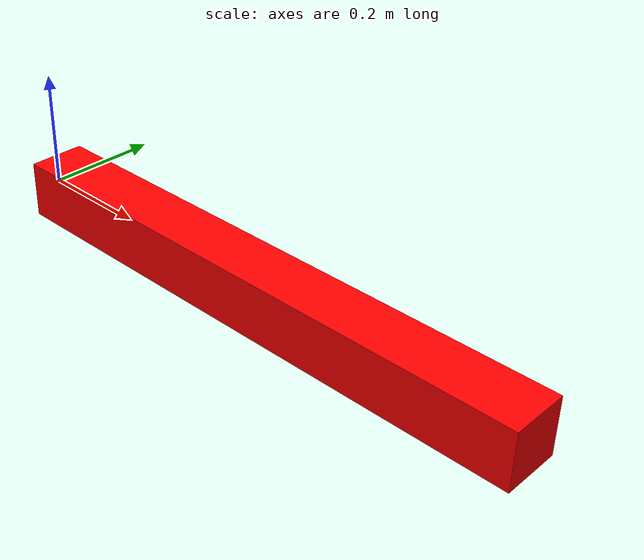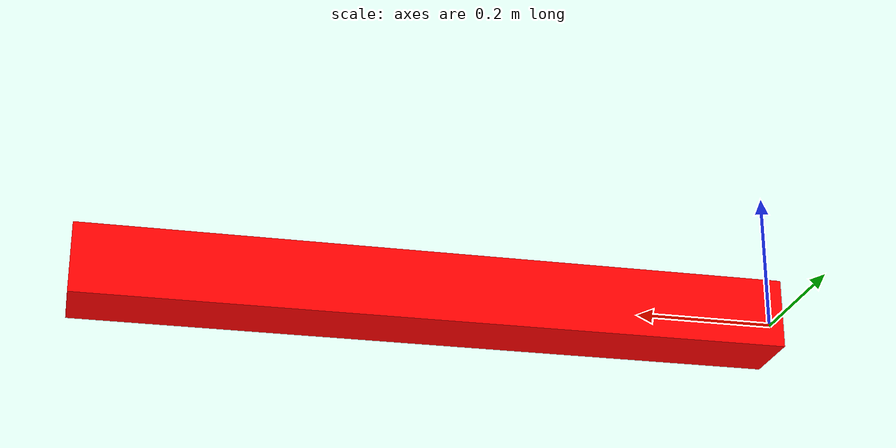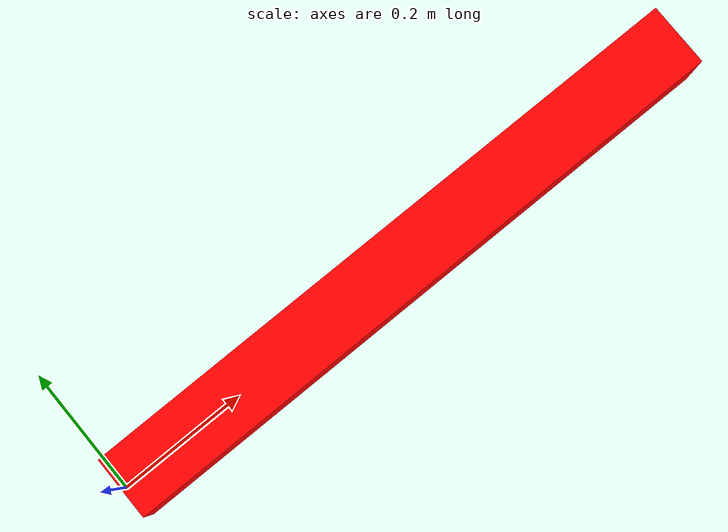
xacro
<?xml version="1.0" encoding="utf-8"  ?>
<robot name="arrow" xmlns:xacro="http://www.ros.org/wiki/xacro">

	<xacro:arg name="add_world_link" default="False" />
	<xacro:arg name="color_rgba" default="1 0 0 1" />

	<xacro:property name="color_rgba" default="$(arg color_rgba)" />
	<xacro:property name="add_world_link" default="$(arg add_world_link)" />

	<material name="color">
		<color rgba="${color_rgba}"/>
	</material>

	<xacro:macro name="box_inertial" params="mass x y z pose_xyz pose_rpy">
		<inertial>
			<origin xyz="${pose_xyz}" rpy="${pose_rpy}"/>
			<mass value="${mass}" />
			<inertia ixx="${0.083 * mass * (y*y + z*z)}" ixy="0.0" ixz="0.0" iyy="${0.083 * mass * (x*x + z*z)}" iyz="0.0" izz="${0.083 * mass * (x*x + y*y)}"/>
		</inertial>
	</xacro:macro>

	<link name="arrow_link">
		<!-- The shin is made of a cylinder plus a sphere, the total length, is shin_height, so the length  of the two are detemrined accordingly -->
        <visual>
			<origin xyz="0.5 0 0" rpy="0 0 0"/>
            <geometry>
				<box size="1 0.1 0.1"/>
            </geometry>
			<material name="color"/>
        </visual>
		<xacro:box_inertial mass="0.001" x="1" y="1" z="1" pose_xyz="0 0 0" pose_rpy="0 0 0"/>
	</link>
	<gazebo reference="arrow_link">
		<visual name="visual">
			<material>
				<ambient>${color_rgba}</ambient>
				<diffuse>${color_rgba}</diffuse>
				<specular>0 0 0 1</specular>
				<emissive>0 0 0 1</emissive>
			</material>
      	</visual>
    </gazebo>
	<gazebo>
		<static>true</static>
	</gazebo>

	<xacro:if value="${add_world_link}">
		<link name="world"/>
		<joint name="world_joint" type="fixed">
			<parent link="world"/>
			<child link="arrow_link"/>
		</joint>
	</xacro:if>

</robot>
